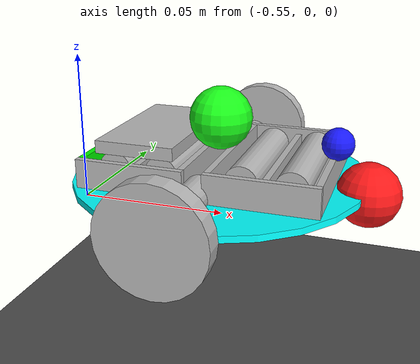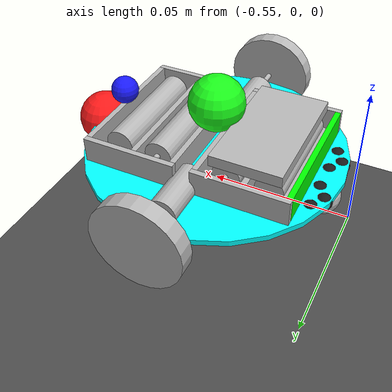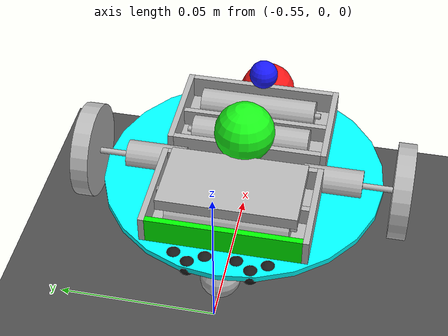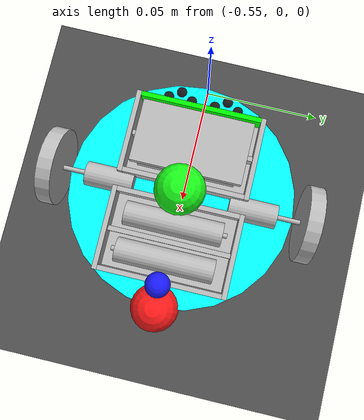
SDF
<?xml version="1.0" ?>
<sdf version="1.10">
    <world name="Forschungsprojekt_world">
        <physics name="default_physics" type="dart">
            <max_step_size>0.001</max_step_size>
            <real_time_factor>1</real_time_factor>
            <real_time_update_rate>1000</real_time_update_rate>
        </physics>

        <plugin
            filename="gz-sim-physics-system"
            name="gz::sim::systems::Physics">
        </plugin>
        <plugin
            filename="gz-sim-scene-broadcaster-system"
            name="gz::sim::systems::SceneBroadcaster">
        </plugin>
        <plugin
          filename="gz-sim-sensors-system"
          name="gz::sim::systems::Sensors">
          <render_engine>ogre2</render_engine>
        </plugin>
        <plugin
            filename="gz-sim-user-commands-system"
            name="gz::sim::systems::UserCommands">
        </plugin>

    <!-- contact sensor system -->
    <plugin filename="gz-sim-contact-system" name="gz::sim::systems::Contact"/>

        <gui>
			<camera name="observation_camera">
                <view_controller>orbit</view_controller>
                <projection_type>perspective</projection_type>
				<track_visual>
					<name>3pi_front_cam_robot</name>
					<static>1</static>
					<xyz>-0.01 0 2</xyz>
                    <inherit_yaw>0</inherit_yaw>
				</track_visual>
			</camera>
		</gui>

		<light type="directional" name="sun">
            <cast_shadows>0</cast_shadows>
            <pose>0 0 10 0 0 0</pose>
            <diffuse>0.8 0.8 0.8 1</diffuse>
            <specular>0.2 0.2 0.2 1</specular>
            <attenuation>
                <range>1000</range>
                <constant>0.9</constant>
                <linear>0.01</linear>
                <quadratic>0.001</quadratic>
            </attenuation>
            <direction>1  0 -0.7</direction>
        </light>

        <include>
            <uri>model://..//default_model//empty_plane</uri>
            <pose> 0 0 -0.1 0 0 0</pose>
        </include>

        ##Insert_Here##

        <include>
            <uri>model://3pi_robot_with_front_cam</uri>
            <pose>-0.5 0 0 0 0 0</pose>
        </include>

    </world>
</sdf>

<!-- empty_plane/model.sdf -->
<sdf version="1.9">
	<model name="empty_plane">
		<static>1</static>
		<pose>0 0 0 0 0 0</pose>
		<link name="link">
                        <kinematic>1</kinematic>
			<collision name="collision">
				<geometry>
					<box>
						<size>500 500 0.1</size>
					</box>
				</geometry>
                                <surface><friction><ode>
                                <mu>10000000000999999</mu>
                                <mu2>1000000000099999</mu2>
                                </ode></friction></surface>

			</collision>
			<visual name="visual">
				<geometry>
					<box>
						<size>500 500 0.1</size>
					</box>
				</geometry>
				<material>
					<ambient>0.3 0.3 0.3 1</ambient>
					<diffuse>0.3 0.3 0.3 1</diffuse>
					<specular>0.3 0.3 0.3 1</specular>
				</material>
			</visual>
		</link>
	</model>
</sdf>

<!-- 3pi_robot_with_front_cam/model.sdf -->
<sdf version="1.11">
  <model name="3pi_robot_with_front_cam">
   <!-- Does not work for some rerason...  If present but not used makes model fall in slow motion! -->

    <static>0</static>
    <pose>0 0 0 0 0 0</pose>
    <frame name="blade_frame" attached_to="blade_link">
      <pose>0.0 0 0 0 0 0</pose>
    </frame>
    <!-- LINKS - LINKS - LINKS -->
    <!-- Central robot body, a flat disc -->
    <link name="blade_link">
      <pose>0 0 0.013 0 0 0</pose>
      <inertial>
        <mass>0.0005</mass>
        <pose>0 0 0.001 0 0 0</pose>
        <inertia>
          <ixx>2.92e-06</ixx>
          <ixy>0</ixy>
          <ixz>0</ixz>
          <iyy>2.92e-06</iyy>
          <iyz>0</iyz>
          <izz>5.52e-06</izz>
        </inertia>
      </inertial>
      <self_collide>0</self_collide>
      <enable_wind>0</enable_wind>
      <kinematic>0</kinematic>
      <gravity>1</gravity>
      <visual name="blade_visual">
        <pose>0 0 0.001 0 0 0</pose>
        <geometry>
          <cylinder>
            <radius>0.047</radius>
            <length>0.002</length>
          </cylinder>
        </geometry>
        <material>
          <ambient>0.0 1.0 1.0 1</ambient>
          <diffuse>0.0 1.0 1.0 1</diffuse>
          <specular>0.0 1.0 1.0 1</specular>
        </material>
        <transparency>0</transparency>
        <cast_shadows>0</cast_shadows>
      </visual>
      </link>

      <!-- lidar 2 cm above robot body, so as to look over the bumper sensor -->
      <link name="lidar_link">
        <pose relative_to="blade_frame">0 0 0.02 0 0 0</pose>
        <!-- disable LIDAR visualization to prevent lidar beams to detect it -->
        <visual name="visual">
          <geometry>
            <sphere>
              <radius>0.01</radius>
            </sphere>
          </geometry>
          <material>
          <ambient>0.1 1 0.1 1</ambient>
          <diffuse>0.1 1 0.1 1</diffuse>
          </material>
        </visual>

        <sensor name="gpu_lidar" type="gpu_lidar">
                <!-- move sensor slightly in front of visual shape to prevent detecting it -->
                <pose>0.011 0 0 0 0 0</pose>
                <topic>/vehicle/lidar</topic>
                <update_rate>300</update_rate>
                <ray>
                <scan>
                  <horizontal>
                     <samples>500</samples>
                     <resolution>1</resolution>
                     <min_angle>-2</min_angle><max_angle>2</max_angle>
                 </horizontal>
                 <vertical><samples>1</samples><resolution>0.01</resolution><min_angle>0</min_angle><max_angle>0</max_angle>
                 </vertical>
                 </scan>

                 <range><min>0.005</min><max>1.5</max><resolution>0.01</resolution></range></ray>
                <always_on>1</always_on>
                <visualize>false</visualize>
            </sensor>
       </link>

    <link name="led1_link">
      <pose>-0.043 -0.01 0.013 0 0 0</pose>
      <inertial><mass>0.00000000001</mass></inertial>
       <visual name="visual">
          <geometry>
            <sphere>
              <radius>0.003</radius>
            </sphere>
          </geometry>
          <material>
          <ambient>0.1 0.1 0.1</ambient>
          <diffuse>0.1 0.1 0.1</diffuse>
          </material>
        </visual>
    </link>

    <link name="led2_link">
      <pose>-0.043 0.01 0.013 0 0 0</pose>
      <inertial><mass>0.00000000001</mass></inertial>
       <visual name="visual">
          <geometry>
            <sphere>
              <radius>0.003</radius>
            </sphere>
          </geometry>
          <material>
          <ambient>0.1 0.1 0.1</ambient>
          <diffuse>0.1 0.1 0.1</diffuse>
          </material>
        </visual>
    </link>

    <link name="led3_link">
      <pose>-0.04 -0.015 0.013 0 0 0</pose>
      <inertial><mass>0.00000000001</mass></inertial>

       <visual name="visual">
          <geometry>
            <sphere>
              <radius>0.003</radius>
            </sphere>
          </geometry>
          <material>
          <ambient>0.1 0.1 0.1</ambient>
          <diffuse>0.1 0.1 0.1</diffuse>
          </material>
        </visual>
    </link>

    <link name="led4_link">
      <pose>-0.04 -0.005 0.013 0 0 0</pose>
      <inertial><mass>0.00000000001</mass></inertial>
       <visual name="visual">
          <geometry>
            <sphere>
              <radius>0.003</radius>
            </sphere>
          </geometry>
          <material>
          <ambient>0.1 0.1 0.1</ambient>
          <diffuse>0.1 0.1 0.1</diffuse>
          </material>
        </visual>
    </link>

    <link name="led5_link">
      <pose>-0.04 0.005 0.013 0 0 0</pose>
      <inertial><mass>0.00000000001</mass></inertial>
       <visual name="visual">
          <geometry>
            <sphere>
              <radius>0.003</radius>
            </sphere>
          </geometry>
          <material>
          <ambient>0.1 0.1 0.1</ambient>
          <diffuse>0.1 0.1 0.1</diffuse>
          </material>
        </visual>
    </link>

    <link name="led6_link">
      <pose>-0.04 0.015 0.013 0 0 0</pose>
      <inertial><mass>0.00000000001</mass></inertial>
       <visual name="visual">
          <geometry>
            <sphere>
              <radius>0.003</radius>
            </sphere>
          </geometry>
          <material>
          <ambient>0.1 0.1 0.1</ambient>
          <diffuse>0.1 0.1 0.1</diffuse>
          </material>
        </visual>
    </link>

    <link name='front_bumper'>
      <pose relative_to="blade_frame">0.047 0 0.0 0 0 0</pose>
      <inertial><mass>0.0000000001</mass></inertial>
      <gravity>1</gravity>
      <kinematic>0</kinematic>
      <collision name="collision_sensor1_volume">

        <geometry>
          <sphere>
            <radius>0.01</radius>
          </sphere>
        </geometry>
        <surface>
          <contact>
          <collide_without_contact>true</collide_without_contact>
          <collide_without_contact_bitmask>0x00</collide_without_contact_bitmask>
            <ode>
              <max_vel> 0.0</max_vel>
              <kp>0</kp>
              <kd>100000000</kd>
            </ode>
          </contact>
            <friction>
            <ode> <mu>200000000000</mu><mu2>2000000000</mu2>
            </ode>
            </friction>

        </surface>
      </collision>
       <visual name="visual">
          <geometry>
            <sphere>
              <radius>0.01</radius>
            </sphere>
          </geometry>
          <material>
          <ambient>1. 0.1 0.1 1</ambient>
          <diffuse>1. 0.1 0.1 1</diffuse>
          </material>
        </visual>
      <sensor name="sensor_contact" type="contact">
        <contact>
          <collision>collision_sensor1_volume</collision>
          <topic>/vehicle/contact_sensor</topic>
        </contact>
        <always_on>1</always_on>
        <update_rate>100</update_rate>
      </sensor>
    </link>

    <link name="battery_b_lr_link">
      <pose>-0.0275 0.02 0.02 1.570796 0 0</pose>
      <inertial>
        <mass>0.000756</mass>
        <pose>0 0 0.02 0 0 0</pose>
        <inertia>
          <ixx>1.06e-06</ixx>
          <ixy>0</ixy>
          <ixz>0</ixz>
          <iyy>1.06e-06</iyy>
          <iyz>0</iyz>
          <izz>9.5e-08</izz>
        </inertia>
      </inertial>
      <self_collide>0</self_collide>
      <enable_wind>0</enable_wind>
      <kinematic>0</kinematic>
      <gravity>1</gravity>
      <visual name="body_visual">
        <pose>0 0 0.02 0 0 0</pose>
        <geometry>
          <cylinder>
            <radius>0.005</radius>
            <length>0.04</length>
          </cylinder>
        </geometry>
        <transparency>0</transparency>
        <cast_shadows>1</cast_shadows>
      </visual>
      <visual name="head_visual">
        <pose>0 0 0.041 0 0 0</pose>
        <geometry>
          <cylinder>
            <radius>0.001</radius>
            <length>0.002</length>
          </cylinder>
        </geometry>
        <transparency>0</transparency>
        <cast_shadows>1</cast_shadows>
      </visual>
    </link>
    <link name="battery_b_rl_link">
      <pose>-0.0125 -0.02 0.02 -1.570796 0 0</pose>
      <inertial>
        <mass>0.000756</mass>
        <pose>0 0 0.02 0 0 0</pose>
        <inertia>
          <ixx>1.06e-06</ixx>
          <ixy>0</ixy>
          <ixz>0</ixz>
          <iyy>1.06e-06</iyy>
          <iyz>0</iyz>
          <izz>9.5e-08</izz>
        </inertia>
      </inertial>
      <self_collide>0</self_collide>
      <enable_wind>0</enable_wind>
      <kinematic>0</kinematic>
      <gravity>1</gravity>
      <visual name="body_visual">
        <pose>0 0 0.02 0 0 0</pose>
        <geometry>
          <cylinder>
            <radius>0.005</radius>
            <length>0.04</length>
          </cylinder>
        </geometry>
        <transparency>0</transparency>
        <cast_shadows>1</cast_shadows>
      </visual>
      <visual name="head_visual">
        <pose>0 0 0.041 0 0 0</pose>
        <geometry>
          <cylinder>
            <radius>0.001</radius>
            <length>0.002</length>
          </cylinder>
        </geometry>
        <transparency>0</transparency>
        <cast_shadows>1</cast_shadows>
      </visual>
    </link>
    <link name="box_b_link">
      <pose>-0.02 0 0.014 0 0 1.570796</pose>
      <inertial>
        <mass>0.000101</mass>
        <pose>0 0 0.005 0 0 0</pose>
        <inertia>
          <ixx>1.06e-07</ixx>
          <ixy>0</ixy>
          <ixz>0</ixz>
          <iyy>2.19e-07</iyy>
          <iyz>0</iyz>
          <izz>3.08e-07</izz>
        </inertia>
      </inertial>
      <self_collide>0</self_collide>
      <enable_wind>0</enable_wind>
      <kinematic>0</kinematic>
      <gravity>1</gravity>
      <visual name="front_visual">
        <pose>0 0.016 0.005 0 0 0</pose>
        <geometry>
          <box>
            <size>0.05 0.002 0.01</size>
          </box>
        </geometry>
        <material>
          <ambient>0 1 0 1</ambient>
          <diffuse>0 1 0 1</diffuse>
          <specular>0 1 0 1</specular>
        </material>
        <transparency>0</transparency>
        <cast_shadows>1</cast_shadows>
      </visual>
      <visual name="back_visual">
        <pose>0 -0.016 0.005 0 0 0</pose>
        <geometry>
          <box>
            <size>0.05 0.002 0.01</size>
          </box>
        </geometry>
        <transparency>0</transparency>
        <cast_shadows>1</cast_shadows>
      </visual>
      <visual name="bottom_visual">
        <pose>0 0 0.001 0 0 0</pose>
        <geometry>
          <box>
            <size>0.05 0.03 0.002</size>
          </box>
        </geometry>
        <transparency>0</transparency>
        <cast_shadows>1</cast_shadows>
      </visual>
      <visual name="left_visual">
        <pose>-0.026 0 0.005 0 0 0</pose>
        <geometry>
          <box>
            <size>0.002 0.034 0.01</size>
          </box>
        </geometry>
        <transparency>0</transparency>
        <cast_shadows>1</cast_shadows>
      </visual>
      <visual name="middle_visual">
        <pose>0 0 0.005 0 0 0</pose>
        <geometry>
          <box>
            <size>0.05 0.002 0.006</size>
          </box>
        </geometry>
        <transparency>0</transparency>
        <cast_shadows>1</cast_shadows>
      </visual>
      <visual name="right_visual">
        <pose>0.026 0 0.005 0 0 0</pose>
        <geometry>
          <box>
            <size>0.002 0.034 0.01</size>
          </box>
        </geometry>
        <transparency>0</transparency>
        <cast_shadows>1</cast_shadows>
      </visual>
    </link>
    <link name="battery_f_lr_link">
      <pose>0.0275 0.02 0.02 1.570796 0 0</pose>
      <inertial>
        <mass>0.000756</mass>
        <pose>0 0 0.02 0 0 0</pose>
        <inertia>
          <ixx>1.06e-06</ixx>
          <ixy>0</ixy>
          <ixz>0</ixz>
          <iyy>1.06e-06</iyy>
          <iyz>0</iyz>
          <izz>9.5e-08</izz>
        </inertia>
      </inertial>
      <self_collide>0</self_collide>
      <enable_wind>0</enable_wind>
      <kinematic>0</kinematic>
      <gravity>1</gravity>
      <visual name="body_visual">
        <pose>0 0 0.02 0 0 0</pose>
        <geometry>
          <cylinder>
            <radius>0.005</radius>
            <length>0.04</length>
          </cylinder>
        </geometry>
        <transparency>0</transparency>
        <cast_shadows>1</cast_shadows>
      </visual>
      <visual name="head_visual">
        <pose>0 0 0.041 0 0 0</pose>
        <geometry>
          <cylinder>
            <radius>0.001</radius>
            <length>0.002</length>
          </cylinder>
        </geometry>
        <transparency>0</transparency>
        <cast_shadows>1</cast_shadows>
      </visual>
    </link>
    <link name="battery_f_rl_link">
      <pose>0.0125 -0.02 0.02 -1.570796 0 0</pose>
      <inertial>
        <mass>0.000756</mass>
        <pose>0 0 0.02 0 0 0</pose>
        <inertia>
          <ixx>1.06e-06</ixx>
          <ixy>0</ixy>
          <ixz>0</ixz>
          <iyy>1.06e-06</iyy>
          <iyz>0</iyz>
          <izz>9.5e-08</izz>
        </inertia>
      </inertial>
      <self_collide>0</self_collide>
      <enable_wind>0</enable_wind>
      <kinematic>0</kinematic>
      <gravity>1</gravity>
      <visual name="body_visual">
        <pose>0 0 0.02 0 0 0</pose>
        <geometry>
          <cylinder>
            <radius>0.005</radius>
            <length>0.04</length>
          </cylinder>
        </geometry>
        <transparency>0</transparency>
        <cast_shadows>1</cast_shadows>
      </visual>
      <visual name="head_visual">
        <pose>0 0 0.041 0 0 0</pose>
        <geometry>
          <cylinder>
            <radius>0.001</radius>
            <length>0.002</length>
          </cylinder>
        </geometry>
        <transparency>0</transparency>
        <cast_shadows>1</cast_shadows>
      </visual>
    </link>
    <link name="box_f_link">
      <pose>0.02 0 0.014 0 0 -1.570796</pose>
      <inertial>
        <mass>0.000101</mass>
        <pose>0 0 0.005 0 0 0</pose>
        <inertia>
          <ixx>1.06e-07</ixx>
          <ixy>0</ixy>
          <ixz>0</ixz>
          <iyy>2.19e-07</iyy>
          <iyz>0</iyz>
          <izz>3.08e-07</izz>
        </inertia>
      </inertial>
      <self_collide>0</self_collide>
      <enable_wind>0</enable_wind>
      <kinematic>0</kinematic>
      <gravity>1</gravity>
      <visual name="right_visual">
        <pose>0.026 0 0.005 0 0 0</pose>
        <geometry>
          <box>
            <size>0.002 0.034 0.01</size>
          </box>
        </geometry>
        <transparency>0</transparency>
        <cast_shadows>1</cast_shadows>
      </visual>
      <visual name="front_visual">
        <pose>0 0.016 0.005 0 0 0</pose>
        <geometry>
          <box>
            <size>0.05 0.002 0.01</size>
          </box>
        </geometry>
        <transparency>0</transparency>
        <cast_shadows>1</cast_shadows>
      </visual>
      <visual name="bottom_visual">
        <pose>0 0 0.001 0 0 0</pose>
        <geometry>
          <box>
            <size>0.05 0.03 0.002</size>
          </box>
        </geometry>
        <transparency>0</transparency>
        <cast_shadows>1</cast_shadows>
      </visual>
      <visual name="middle_visual">
        <pose>0 0 0.005 0 0 0</pose>
        <geometry>
          <box>
            <size>0.05 0.002 0.006</size>
          </box>
        </geometry>
        <transparency>0</transparency>
        <cast_shadows>1</cast_shadows>
      </visual>
      <visual name="left_visual">
        <pose>-0.026 0 0.005 0 0 0</pose>
        <geometry>
          <box>
            <size>0.002 0.034 0.01</size>
          </box>
        </geometry>
        <transparency>0</transparency>
        <cast_shadows>1</cast_shadows>
      </visual>
      <visual name="back_visual">
        <pose>0 -0.016 0.005 0 0 0</pose>
        <geometry>
          <box>
            <size>0.05 0.002 0.01</size>
          </box>
        </geometry>
        <transparency>0</transparency>
        <cast_shadows>1</cast_shadows>
      </visual>
    </link>
    <link name="caster_link">
      <pose>-0.04 0 0 0 0 0</pose>
      <inertial>
        <mass>0.000144</mass>
        <pose>0 0 0.0065 0 0 0</pose>
        <inertia>
          <ixx>2.4e-08</ixx>
          <ixy>0</ixy>
          <ixz>0</ixz>
          <iyy>2.4e-08</iyy>
          <iyz>0</iyz>
          <izz>2.4e-08</izz>
        </inertia>
      </inertial>
      <self_collide>0</self_collide>
      <enable_wind>0</enable_wind>
      <kinematic>0</kinematic>
      <gravity>1</gravity>
      <visual name="body_visual">
        <pose>0 0 0.0065 0 0 0</pose>
        <geometry>
          <sphere>
            <radius>0.0065</radius>
          </sphere>
        </geometry>
        <transparency>0</transparency>
        <cast_shadows>1</cast_shadows>
      </visual>
      <collision name="body_collision">
        <laser_retro>0</laser_retro>
        <max_contacts>10</max_contacts>
        <pose>0 0 0.0065 0 0 0</pose>
        <geometry>
          <sphere>
            <radius>0.0065</radius>
          </sphere>
        </geometry>
        <surface>
          <friction>
            <ode>
              <mu>2</mu>
              <mu2>2</mu2>
              <slip1>0</slip1>
              <slip2>0</slip2>
            </ode>
            <torsional>
              <coefficient>0.75</coefficient>
              <use_patch_radius>0</use_patch_radius>
              <surface_radius>0.0065</surface_radius>
              <ode>
                <slip>0</slip>
              </ode>
            </torsional>
          </friction>
          <contact>
            <ode>
              <soft_cfm>0</soft_cfm>
              <soft_erp>0.2</soft_erp>
              <kp>1e+13</kp>
              <kd>1</kd>
              <max_vel>0</max_vel>
              <min_depth>0.001</min_depth>
            </ode>
          </contact>
        </surface>
      </collision>
    </link>
    <link name="wheel_l_link">
      <pose>0 -0.05 0.016 1.570796 0 0</pose>
      <inertial>
        <mass>0.000311</mass>
        <pose>0 0 0.003 0 0 0</pose>
        <inertia>
          <ixx>2.08e-07</ixx>
          <ixy>0</ixy>
          <ixz>0</ixz>
          <iyy>2.08e-07</iyy>
          <iyz>0</iyz>
          <izz>3.98e-07</izz>
        </inertia>
      </inertial>
      <self_collide>0</self_collide>
      <enable_wind>0</enable_wind>
      <kinematic>0</kinematic>
      <gravity>1</gravity>
      <visual name="body_visual">
        <pose>0 0 0.003 0 0 0</pose>
        <geometry>
          <cylinder>
            <radius>0.016</radius>
            <length>0.006</length>
          </cylinder>
        </geometry>
        <transparency>0</transparency>
        <cast_shadows>1</cast_shadows>
      </visual>
      <collision name="body_collision">
        <laser_retro>0</laser_retro>
        <max_contacts>10</max_contacts>
        <pose>0 0 0.003 0 0 0</pose>
        <geometry>
          <cylinder>
            <radius>0.016</radius>
            <length>0.006</length>
          </cylinder>
        </geometry>
        <surface>
          <friction>
            <ode>
              <mu>2000000000</mu>
              <mu2>2000000000</mu2>
              <fdir1>0 0 1</fdir1>
              <slip1>0</slip1>
              <slip2>0</slip2>
            </ode>
            <torsional>
              <coefficient>15</coefficient>
              <use_patch_radius>0</use_patch_radius>
              <surface_radius>0.016</surface_radius>
              <ode>
                <slip>0</slip>
              </ode>
            </torsional>
          </friction>
          <contact>
            <ode>
              <soft_cfm>0</soft_cfm>
              <soft_erp>0.2</soft_erp>
              <kp>1e+13</kp>
              <kd>1</kd>
              <max_vel>1</max_vel>
              <min_depth>0.001</min_depth>
            </ode>
          </contact>
        </surface>
      </collision>
    </link>
    <link name="motor_l_link">
      <pose>0 -0.02 0.016 1.570796 0 0</pose>
      <inertial>
        <mass>0.003158</mass>
        <pose>0 0 0.01 0 0 0</pose>
        <inertia>
          <ixx>1.25e-06</ixx>
          <ixy>0</ixy>
          <ixz>0</ixz>
          <iyy>1.25e-06</iyy>
          <iyz>0</iyz>
          <izz>3.95e-07</izz>
        </inertia>
      </inertial>
      <self_collide>0</self_collide>
      <enable_wind>0</enable_wind>
      <kinematic>0</kinematic>
      <gravity>1</gravity>
      <visual name="body_visual">
        <pose>0 0 0.01 0 0 0</pose>
        <geometry>
          <cylinder>
            <radius>0.005</radius>
            <length>0.02</length>
          </cylinder>
        </geometry>
        <transparency>0</transparency>
        <cast_shadows>1</cast_shadows>
      </visual>
      <visual name="axis_visual">
        <pose>0 0 0.025 0 0 0</pose>
        <geometry>
          <cylinder>
            <radius>0.001</radius>
            <length>0.01</length>
          </cylinder>
        </geometry>
        <transparency>0</transparency>
        <cast_shadows>1</cast_shadows>
      </visual>
    </link>
    <link name="wheel_r_link">
      <pose>0 0.05 0.016 -1.570796 0 0</pose>
      <inertial>
        <mass>0.000311</mass>
        <pose>0 0 0.003 0 0 0</pose>
        <inertia>
          <ixx>2.08e-07</ixx>
          <ixy>0</ixy>
          <ixz>0</ixz>
          <iyy>2.08e-07</iyy>
          <iyz>0</iyz>
          <izz>3.98e-07</izz>
        </inertia>
      </inertial>
      <self_collide>0</self_collide>
      <enable_wind>0</enable_wind>
      <kinematic>0</kinematic>
      <gravity>1</gravity>
      <visual name="body_visual">
        <pose>0 0 0.003 0 0 0</pose>
        <geometry>
          <cylinder>
            <radius>0.016</radius>
            <length>0.006</length>
          </cylinder>
        </geometry>
        <transparency>0</transparency>
        <cast_shadows>1</cast_shadows>
      </visual>
      <collision name="body_collision">
        <laser_retro>0</laser_retro>
        <max_contacts>10</max_contacts>
        <pose>0 0 0.003 0 0 0</pose>
        <geometry>
          <cylinder>
            <radius>0.016</radius>
            <length>0.006</length>
          </cylinder>
        </geometry>
        <surface>
          <friction>
            <ode>
              <mu>2000000000</mu>
              <mu2>20000000000</mu2>
               <fdir1>0 0 1</fdir1>

              <slip1>0</slip1>
              <slip2>0</slip2>
            </ode>
            <torsional>
              <coefficient>15</coefficient>
              <use_patch_radius>0</use_patch_radius>
              <surface_radius>0.016</surface_radius>
              <ode>
                <slip>0</slip>
              </ode>
            </torsional>
          </friction>
          <contact>
            <ode>
              <soft_cfm>0</soft_cfm>
              <soft_erp>0.2</soft_erp>
              <kp>1e+13</kp>
              <kd>1</kd>
              <max_vel>1</max_vel>
              <min_depth>0.001</min_depth>
            </ode>
          </contact>
        </surface>
      </collision>
    </link>
    <link name="motor_r_link">
      <pose>0 0.02 0.016 -1.570796 0 0</pose>
      <inertial>
        <mass>0.003158</mass>
        <pose>0 0 0.01 0 0 0</pose>
        <inertia>
          <ixx>1.25e-06</ixx>
          <ixy>0</ixy>
          <ixz>0</ixz>
          <iyy>1.25e-06</iyy>
          <iyz>0</iyz>
          <izz>3.95e-07</izz>
        </inertia>
      </inertial>
      <self_collide>0</self_collide>
      <enable_wind>0</enable_wind>
      <kinematic>0</kinematic>
      <gravity>1</gravity>
      <visual name="body_visual">
        <pose>0 0 0.01 0 0 0</pose>
        <geometry>
          <cylinder>
            <radius>0.005</radius>
            <length>0.02</length>
          </cylinder>
        </geometry>
        <transparency>0</transparency>
        <cast_shadows>1</cast_shadows>
      </visual>
      <visual name="axis_visual">
        <pose>0 0 0.025 0 0 0</pose>
        <geometry>
          <cylinder>
            <radius>0.001</radius>
            <length>0.01</length>
          </cylinder>
        </geometry>
        <transparency>0</transparency>
        <cast_shadows>1</cast_shadows>
      </visual>
    </link>
    <link name="display_link">
      <pose>-0.02 0 0.025 0 0 1.570796</pose>
      <inertial>
        <mass>0.001164</mass>
        <pose>0 0 0.002 0 0 0</pose>
        <inertia>
          <ixx>6.22e-07</ixx>
          <ixy>0</ixy>
          <ixz>0</ixz>
          <iyy>1.98e-06</iyy>
          <iyz>0</iyz>
          <izz>2.57e-06</izz>
        </inertia>
      </inertial>
      <self_collide>0</self_collide>
      <enable_wind>0</enable_wind>
      <kinematic>0</kinematic>
      <gravity>1</gravity>
      <visual name="body_visual">
        <pose>0 0 0.002 0 0 0</pose>
        <geometry>
          <box>
            <size>0.045 0.025 0.004</size>
          </box>
        </geometry>
        <transparency>0</transparency>
        <cast_shadows>1</cast_shadows>
      </visual>
    </link>
    <!-- exchange this for other camera type depending on application -->

    <!-- down-looking line camera placed slightly ahead of the robot -->

    <!-- forward-looking camera with 80x80 RGB -->
    <link name="front_camera_link">
      <pose relative_to="blade_frame">0.047 0 0.015 0 0 0</pose>
       <visual name="visual">
         <pose>-0.01 0 0 0 0 0</pose>
          <geometry>
            <sphere>
              <radius>0.005</radius>
            </sphere>
          </geometry>
          <material>
          <ambient>0.1 0.1 1 1</ambient>
          <diffuse>0.1 0.1 1 1</diffuse>
          </material>
        </visual>

      <inertial>
        <mass>1e-12</mass>
      </inertial>
      <self_collide>0</self_collide>
      <sensor name="camera" type="camera">
        <camera>
          <horizontal_fov>1.047</horizontal_fov>
          <image>
            <height>80</height>
            <width>80</width>
            <format>R8G8B8</format>
          </image>
          <save enabled="0">
                                        </save>
          <clip>
            <near>0.001</near>
            <far>3</far>
          </clip>
        </camera>
        <always_on>1</always_on>
        <update_rate>30</update_rate>
        <visualize>0</visualize>
        <topic>/vehicle/camera</topic>
      </sensor>
    </link>

    <!-- Comment this in if you want to use a top camera that actually shows the chosen material properties n real time. GUI does not do this due to bugs -->

    <!-- JOINTS - JOINTS - JOINTS -->
    <joint name="battery_b_lr_joint" type="fixed">
      <parent>box_b_link</parent>
      <child>battery_b_lr_link</child>
      <pose>0 0 0 0 0 0</pose>
      <physics>
        <ode>
          <limit>
            <cfm>0</cfm>
            <erp>0.2</erp>
          </limit>
          <suspension>
            <cfm>0</cfm>
            <erp>0.2</erp>
          </suspension>
        </ode>
      </physics>
    </joint>
    <joint name="battery_b_rl_joint" type="fixed">
      <parent>box_b_link</parent>
      <child>battery_b_rl_link</child>
      <pose>0 0 0 0 0 0</pose>
      <physics>
        <ode>
          <limit>
            <cfm>0</cfm>
            <erp>0.2</erp>
          </limit>
          <suspension>
            <cfm>0</cfm>
            <erp>0.2</erp>
          </suspension>
        </ode>
      </physics>
    </joint>
    <joint name="battery_f_lr_joint" type="fixed">
      <parent>box_f_link</parent>
      <child>battery_f_lr_link</child>
      <pose>0 0 0 0 0 0</pose>
      <physics>
        <ode>
          <limit>
            <cfm>0</cfm>
            <erp>0.2</erp>
          </limit>
          <suspension>
            <cfm>0</cfm>
            <erp>0.2</erp>
          </suspension>
        </ode>
      </physics>
    </joint>
    <joint name="box_b_joint" type="fixed">
      <parent>blade_link</parent>
      <child>box_b_link</child>
      <pose>0 0 0 0 0 0</pose>
      <physics>
        <ode>
          <limit>
            <cfm>0</cfm>
            <erp>0.2</erp>
          </limit>
          <suspension>
            <cfm>0</cfm>
            <erp>0.2</erp>
          </suspension>
        </ode>
      </physics>
    </joint>
    <joint name="battery_f_rl_joint" type="fixed">
      <parent>box_f_link</parent>
      <child>battery_f_rl_link</child>
      <pose>0 0 0 0 0 0</pose>
      <physics>
        <ode>
          <limit>
            <cfm>0</cfm>
            <erp>0.2</erp>
          </limit>
          <suspension>
            <cfm>0</cfm>
            <erp>0.2</erp>
          </suspension>
        </ode>
      </physics>
    </joint>
    <joint name="box_f_joint" type="fixed">
      <parent>blade_link</parent>
      <child>box_f_link</child>
      <pose>0 0 0 0 0 0</pose>
      <physics>
        <ode>
          <limit>
            <cfm>0</cfm>
            <erp>0.2</erp>
          </limit>
          <suspension>
            <cfm>0</cfm>
            <erp>0.2</erp>
          </suspension>
        </ode>
      </physics>
    </joint>
    <joint name="caster_joint" type="ball">
      <parent>blade_link</parent>
      <child>caster_link</child>
      <pose>0 0 0.0065 0 0 0</pose>
      <physics>
        <ode>
          <limit>
            <cfm>0</cfm>
            <erp>0.2</erp>
          </limit>
          <suspension>
            <cfm>0</cfm>
            <erp>0.2</erp>
          </suspension>
        </ode>
      </physics>
    </joint>
    <joint name="left_axis_joint" type="revolute">
      <parent>blade_link</parent>
      <child>wheel_l_link</child>
      <pose>0 0 0 0 0 0</pose>
      <axis>
        <xyz>0 0 -1</xyz>
      </axis>
      <physics>
        <ode>
          <cfm>0</cfm>
          <erp>0.2</erp>
          <limit>
            <cfm>0</cfm>
            <erp>0.2</erp>
          </limit>
          <suspension>
            <cfm>0</cfm>
            <erp>0.2</erp>
          </suspension>
        </ode>
      </physics>
    </joint>
    <joint name="motor_l_joint" type="fixed">
      <parent>blade_link</parent>
      <child>motor_l_link</child>
      <pose>0 0 0 0 0 0</pose>
    </joint>
    <joint name="right_axis_joint" type="revolute">
      <parent>blade_link</parent>
      <child>wheel_r_link</child>
      <pose>0 0 0 0 0 0</pose>
      <axis>
        <xyz>0 0 1</xyz>
      </axis>
      <physics>
        <ode>
          <cfm>0</cfm>
          <erp>0.2</erp>
          <limit>
            <cfm>0</cfm>
            <erp>0.2</erp>
          </limit>
          <suspension>
            <cfm>0</cfm>
            <erp>0.2</erp>
          </suspension>
        </ode>
      </physics>
    </joint>
    <joint name="motor_r_joint" type="fixed">
      <parent>blade_link</parent>
      <child>motor_r_link</child>
      <pose>0 0 0 0 0 0</pose>
    </joint>
    <joint name="display_joint" type="fixed">
      <parent>box_b_link</parent>
      <child>display_link</child>
      <pose>0 0 0 0 0 0</pose>
    </joint>
    <joint name="front_camera_joint" type="fixed">
      <parent>blade_link</parent>
      <child>front_camera_link</child>
      <pose>0 0 0 0 0 0</pose>
    </joint>
    <joint name="led1_joint" type="fixed">
      <parent>blade_link</parent>
      <child>led1_link</child>
      <pose>0 0 0 0 0 0</pose>
    </joint>
    <joint name="led2_joint" type="fixed">
      <parent>blade_link</parent>
      <child>led2_link</child>
      <pose>0 0 0 0 0 0</pose>
    </joint>
    <joint name="led3_joint" type="fixed">
      <parent>blade_link</parent>
      <child>led3_link</child>
      <pose>0 0 0 0 0 0</pose>
    </joint>
    <joint name="led4_joint" type="fixed">
      <parent>blade_link</parent>
      <child>led4_link</child>
      <pose>0 0 0 0 0 0</pose>
    </joint>
    <joint name="led5_joint" type="fixed">
      <parent>blade_link</parent>
      <child>led5_link</child>
      <pose>0 0 0 0 0 0</pose>
    </joint>
    <joint name="led6_joint" type="fixed">
      <parent>blade_link</parent>
      <child>led6_link</child>
      <pose>0 0 0 0 0 0</pose>
    </joint>
    <joint name="lidar_joint" type="fixed">
      <parent>blade_link</parent>
      <child>lidar_link</child>
      <pose>0 0 0 0 0 0</pose>
    </joint>

    <!-- com,ment out if no top camera used -->

    <joint name="collider_fix_joint" type="fixed">
      <parent>blade_link</parent>
      <child>front_bumper</child>
      <pose>0 0 0 0 0 0</pose>
    </joint>
    <!-- PLUGINS - PLUGINS - PLUGINS -->
    <plugin filename="gz-sim-diff-drive-system" name="gz::sim::systems::DiffDrive">
      <left_joint>left_axis_joint</left_joint>
      <right_joint>right_axis_joint</right_joint>
      <wheel_separation>0.1</wheel_separation>
      <wheel_radius>0.032</wheel_radius>
      <min_velocity>-2000.0</min_velocity>
      <max_velocity>+2000.0</max_velocity>
      <min_acceleration>-2000000000000000</min_acceleration>
      <max_acceleration>+2000000000000000</max_acceleration>
      <min_jerk>-200000000000000</min_jerk>
      <max_jerk>+200000000000000</max_jerk>
      <topic>/vehicle/motor</topic>
      <odom_topic>/vehicle/odo</odom_topic>
      <odom_publish_frequency>120</odom_publish_frequency>
    </plugin>
  </model>
</sdf>
